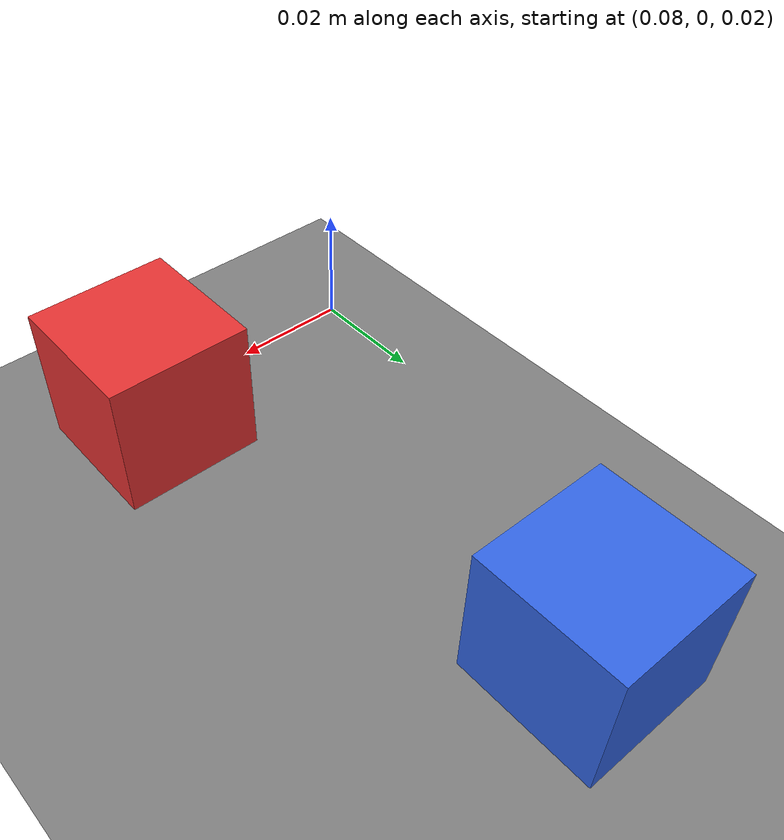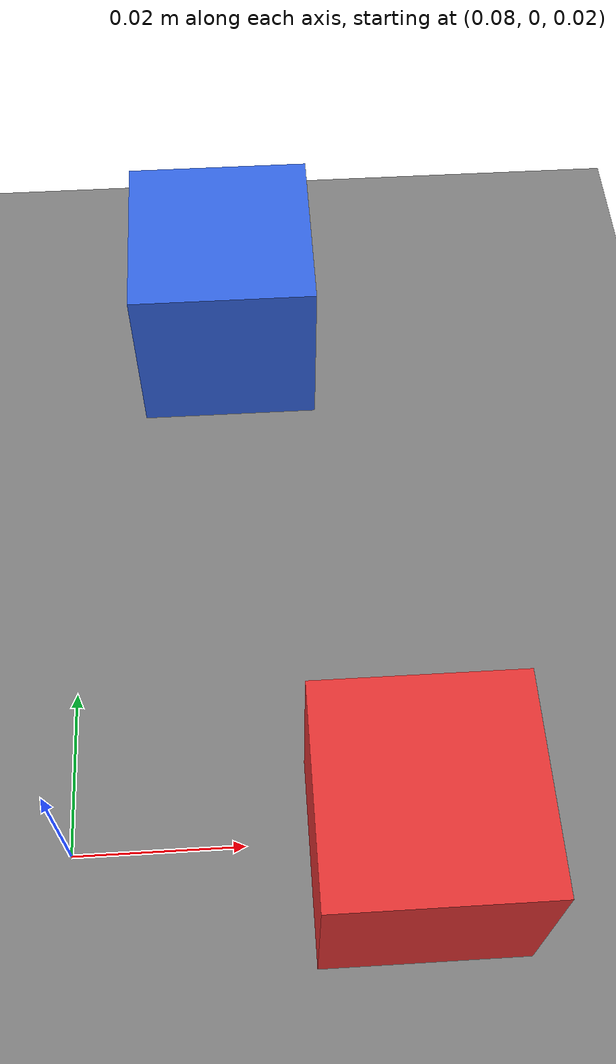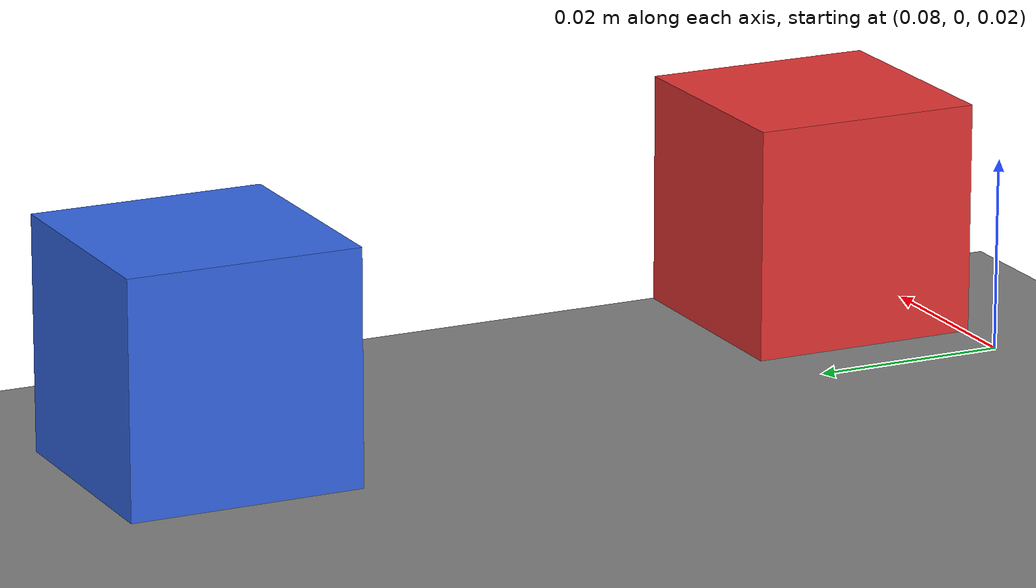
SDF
<?xml version="1.0" ?>
<sdf version="1.10">
  <world name="pick_and_place">
    <physics name="1ms" type="ignored">
      <max_step_size>0.001</max_step_size>
      <real_time_factor>1.0</real_time_factor>
    </physics>

    <plugin filename="gz-sim-physics-system" name="gz::sim::systems::Physics"/>
    <plugin filename="gz-sim-user-commands-system" name="gz::sim::systems::UserCommands"/>
    <plugin filename="gz-sim-scene-broadcaster-system" name="gz::sim::systems::SceneBroadcaster"/>
    <plugin filename="gz-sim-sensors-system" name="gz::sim::systems::Sensors">
      <render_engine>ogre2</render_engine>
    </plugin>

    <light type="directional" name="sun">
      <pose>0 0 10 0 0 0</pose>
      <diffuse>0.9 0.9 0.9 1</diffuse>
      <direction>-0.5 0.3 -0.9</direction>
    </light>

    <model name="ground_plane">
      <static>true</static>
      <link name="link">
        <collision name="collision">
          <geometry><plane><normal>0 0 1</normal><size>2 2</size></plane></geometry>
        </collision>
        <visual name="visual">
          <geometry><plane><normal>0 0 1</normal><size>2 2</size></plane></geometry>
          <material>
            <ambient>0.5 0.5 0.5 1</ambient>
            <diffuse>0.5 0.5 0.5 1</diffuse>
          </material>
        </visual>
      </link>
    </model>

    <!-- cube_a — matches configs/simulation.toml -->
    <model name="cube_a">
      <pose>0.12 0.00 0.025 0 0 0</pose>
      <link name="link">
        <inertial><mass>0.02</mass></inertial>
        <collision name="c"><geometry><box><size>0.025 0.025 0.025</size></box></geometry></collision>
        <visual name="v">
          <geometry><box><size>0.025 0.025 0.025</size></box></geometry>
          <material>
            <diffuse>0.9 0.2 0.2 1</diffuse>
            <ambient>0.9 0.2 0.2 1</ambient>
          </material>
        </visual>
      </link>
    </model>

    <model name="cube_b">
      <pose>0.10 0.08 0.025 0 0 0</pose>
      <link name="link">
        <inertial><mass>0.02</mass></inertial>
        <collision name="c"><geometry><box><size>0.025 0.025 0.025</size></box></geometry></collision>
        <visual name="v">
          <geometry><box><size>0.025 0.025 0.025</size></box></geometry>
          <material>
            <diffuse>0.2 0.4 0.9 1</diffuse>
            <ambient>0.2 0.4 0.9 1</ambient>
          </material>
        </visual>
      </link>
    </model>

  </world>
</sdf>
